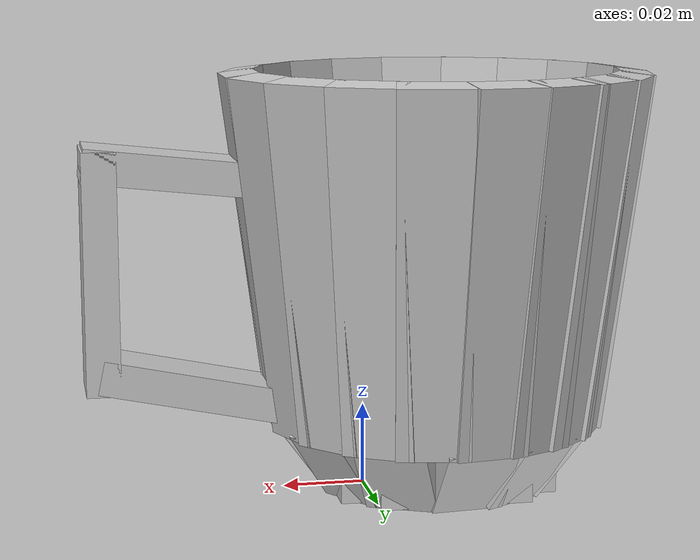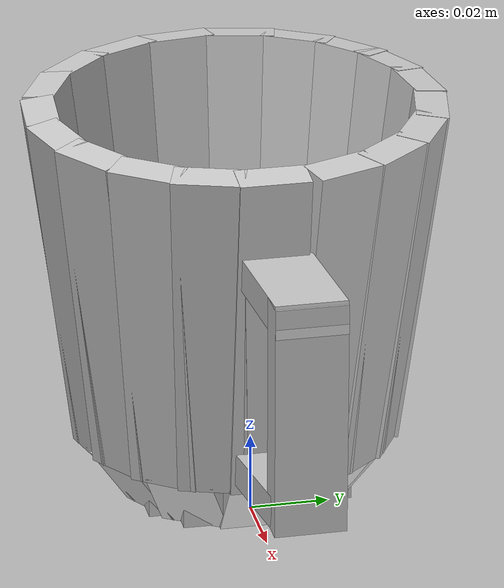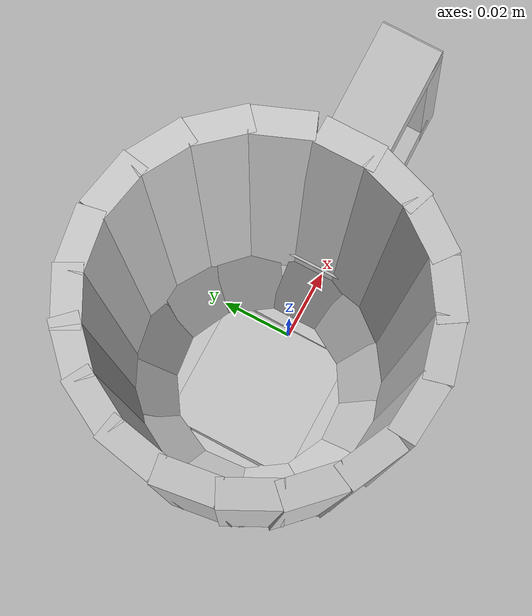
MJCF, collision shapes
<mujoco model="white_yellow_mug">
  <asset>
  <texture file="../textures/white_yellow_mug_texture.png" name="tex-white_yellow_mug" type="2d" />
  <material name="white_yellow_mug" reflectance="0.5" texrepeat="1 1" texture="tex-white_yellow_mug" texuniform="false" />
  <mesh file="meshes/white_yellow_mug_vis.msh" name="white_yellow_mug_vis" scale="1.0 1.0 1.0" /></asset>
  <worldbody>
    <body>
      <body name="object">
        <geom pos="0 0 0" mesh="white_yellow_mug_vis" type="mesh" contype="0" conaffinity="0" solimp="0.998 0.998 0.001" solref="0.001 1" density="100" friction="0.95 0.3 0.1" material="white_yellow_mug" group="1" condim="4"/>

        <geom solimp="0.998 0.998 0.001" solref="0.001 1" density="100" friction="0.95 0.3 0.1" type="box" pos="0.06406 -0.00000 0.05598" quat="1.00000 -0.00000 -0.00000 -0.00000" size="0.00412 0.00876 0.02924" group="0" rgba="0.8 0.8 0.8 0." />
        <geom solimp="0.998 0.998 0.001" solref="0.001 1" density="100" friction="0.95 0.3 0.1" type="box" pos="0.04022 0.00000 0.02629" quat="0.63072 0.00000 -0.77601 0.00000" size="0.00413 0.00876 0.02493" group="0" rgba="0.8 0.8 0.8 0." />
        <geom solimp="0.998 0.998 0.001" solref="0.001 1" density="100" friction="0.95 0.3 0.1" type="box" pos="0.04641 0.00000 0.07965" quat="0.74473 -0.00000 0.66737 -0.00000" size="0.00411 0.00876 0.02172" group="0" rgba="0.8 0.8 0.8 0." />
        <geom solimp="0.998 0.998 0.001" solref="0.001 1" density="100" friction="0.95 0.3 0.1" type="box" pos="0.02428 -0.00100 0.05934" quat="0.99786 -0.00000 0.06541 -0.00000" size="0.00412 0.00876 0.04361" group="0" rgba="0.8 0.8 0.8 0." />
        <geom solimp="0.998 0.998 0.001" solref="0.001 1" density="100" friction="0.95 0.3 0.1" type="box" pos="0.02168 0.01468 0.05934" quat="0.01223 0.98027 0.18655 -0.06426" size="0.00412 0.00876 0.04361" group="0" rgba="0.8 0.8 0.8 0." />
        <geom solimp="0.998 0.998 0.001" solref="0.001 1" density="100" friction="0.95 0.3 0.1" type="box" pos="0.01459 0.02702 0.05934" quat="0.02282 0.93515 0.34816 -0.06130" size="0.00412 0.00876 0.04361" group="0" rgba="0.8 0.8 0.8 0." />
        <geom solimp="0.998 0.998 0.001" solref="0.001 1" density="100" friction="0.95 0.3 0.1" type="box" pos="0.00383 0.03634 0.05934" quat="0.05661 0.49992 -0.86360 0.03277" size="0.00413 0.00876 0.04361" group="0" rgba="0.8 0.8 0.8 0." />
        <geom solimp="0.998 0.998 0.001" solref="0.001 1" density="100" friction="0.95 0.3 0.1" type="box" pos="-0.00868 0.04141 0.05934" quat="0.04134 0.77326 0.63070 -0.05069" size="0.00412 0.00876 0.04361" group="0" rgba="0.8 0.8 0.8 0." />
        <geom solimp="0.998 0.998 0.001" solref="0.001 1" density="100" friction="0.95 0.3 0.1" type="box" pos="-0.02322 0.04219 0.05934" quat="0.04942 0.65373 0.75390 -0.04285" size="0.00412 0.00876 0.04361" group="0" rgba="0.8 0.8 0.8 0." />
        <geom solimp="0.998 0.998 0.001" solref="0.001 1" density="100" friction="0.95 0.3 0.1" type="box" pos="-0.03613 0.03851 0.05934" quat="0.52640 -0.05557 0.03451 0.84772" size="0.00412 0.00876 0.04361" group="0" rgba="0.8 0.8 0.8 0." />
        <geom solimp="0.998 0.998 0.001" solref="0.001 1" density="100" friction="0.95 0.3 0.1" type="box" pos="-0.04594 0.03217 0.05934" quat="0.05978 0.40487 0.91203 -0.02654" size="0.00413 0.00876 0.04361" group="0" rgba="0.8 0.8 0.8 0." />
        <geom solimp="0.998 0.998 0.001" solref="0.001 1" density="100" friction="0.95 0.3 0.1" type="box" pos="-0.05444 0.02216 0.05934" quat="0.25900 -0.06317 0.01698 0.96366" size="0.00412 0.00876 0.04361" group="0" rgba="0.8 0.8 0.8 0." />
        <geom solimp="0.998 0.998 0.001" solref="0.001 1" density="100" friction="0.95 0.3 0.1" type="box" pos="-0.05951 0.00987 0.05934" quat="0.06505 0.10512 0.99231 -0.00689" size="0.00412 0.00876 0.04361" group="0" rgba="0.8 0.8 0.8 0." />
        <geom solimp="0.998 0.998 0.001" solref="0.001 1" density="100" friction="0.95 0.3 0.1" type="box" pos="-0.06044 -0.00450 0.05934" quat="0.06466 0.06527 0.00424 -0.99576" size="0.00413 0.00876 0.04361" group="0" rgba="0.8 0.8 0.8 0." />
        <geom solimp="0.998 0.998 0.001" solref="0.001 1" density="100" friction="0.95 0.3 0.1" type="box" pos="-0.05654 -0.01830 0.05934" quat="0.06362 -0.23170 0.97059 0.01519" size="0.00412 0.00876 0.04361" group="0" rgba="0.8 0.8 0.8 0." />
        <geom solimp="0.998 0.998 0.001" solref="0.001 1" density="100" friction="0.95 0.3 0.1" type="box" pos="-0.04863 -0.02964 0.05934" quat="0.38651 0.06030 0.02533 -0.91996" size="0.00413 0.00876 0.04361" group="0" rgba="0.8 0.8 0.8 0." />
        <geom solimp="0.998 0.998 0.001" solref="0.001 1" density="100" friction="0.95 0.3 0.1" type="box" pos="-0.03703 -0.03808 0.05934" quat="0.05516 -0.53632 0.84148 0.03516" size="0.00412 0.00876 0.04361" group="0" rgba="0.8 0.8 0.8 0." />
        <geom solimp="0.998 0.998 0.001" solref="0.001 1" density="100" friction="0.95 0.3 0.1" type="box" pos="-0.02220 -0.04230 0.05934" quat="0.68004 0.04787 0.04458 -0.73025" size="0.00413 0.00876 0.04361" group="0" rgba="0.8 0.8 0.8 0." />
        <geom solimp="0.998 0.998 0.001" solref="0.001 1" density="100" friction="0.95 0.3 0.1" type="box" pos="-0.00773 -0.04118 0.05934" quat="0.03955 -0.79478 0.60337 0.05210" size="0.00412 0.00876 0.04361" group="0" rgba="0.8 0.8 0.8 0." />
        <geom solimp="0.998 0.998 0.001" solref="0.001 1" density="100" friction="0.95 0.3 0.1" type="box" pos="0.00471 -0.03578 0.05934" quat="0.03072 -0.88092 0.46872 0.05775" size="0.00412 0.00876 0.04361" group="0" rgba="0.8 0.8 0.8 0." />
        <geom solimp="0.998 0.998 0.001" solref="0.001 1" density="100" friction="0.95 0.3 0.1" type="box" pos="0.01547 -0.02593 0.05934" quat="0.02035 -0.94832 0.31051 0.06216" size="0.00412 0.00876 0.04361" group="0" rgba="0.8 0.8 0.8 0." />
        <geom solimp="0.998 0.998 0.001" solref="0.001 1" density="100" friction="0.95 0.3 0.1" type="box" pos="0.02184 -0.01422 0.05934" quat="0.01035 -0.98528 0.15795 0.06459" size="0.00412 0.00876 0.04361" group="0" rgba="0.8 0.8 0.8 0." />
        <geom solimp="0.998 0.998 0.001" solref="0.001 1" density="100" friction="0.95 0.3 0.1" type="box" pos="0.01284 -0.00100 0.01060" quat="0.95039 -0.00000 0.31107 -0.00000" size="0.00407 0.00876 0.01028" group="0" rgba="0.8 0.8 0.8 0." />
        <geom solimp="0.998 0.998 0.001" solref="0.001 1" density="100" friction="0.95 0.3 0.1" type="box" pos="0.00804 0.01661 0.01060" quat="0.09140 0.90843 0.27925 -0.29735" size="0.00407 0.00876 0.01028" group="0" rgba="0.8 0.8 0.8 0." />
        <geom solimp="0.998 0.998 0.001" solref="0.001 1" density="100" friction="0.95 0.3 0.1" type="box" pos="-0.00359 0.02740 0.01060" quat="0.80691 -0.16435 0.26412 0.50212" size="0.00407 0.00876 0.01028" group="0" rgba="0.8 0.8 0.8 0." />
        <geom solimp="0.998 0.998 0.001" solref="0.001 1" density="100" friction="0.95 0.3 0.1" type="box" pos="-0.02029 0.03097 0.01060" quat="0.63771 -0.23063 0.20873 0.70468" size="0.00407 0.00876 0.01028" group="0" rgba="0.8 0.8 0.8 0." />
        <geom solimp="0.998 0.998 0.001" solref="0.001 1" density="100" friction="0.95 0.3 0.1" type="box" pos="-0.03400 0.02672 0.01060" quat="0.14973 0.83305 -0.45745 0.27267" size="0.00407 0.00876 0.01028" group="0" rgba="0.8 0.8 0.8 0." />
        <geom solimp="0.998 0.998 0.001" solref="0.001 1" density="100" friction="0.95 0.3 0.1" type="box" pos="-0.04548 0.01480 0.01060" quat="0.21896 -0.30271 0.07166 0.92482" size="0.00407 0.00876 0.01028" group="0" rgba="0.8 0.8 0.8 0." />
        <geom solimp="0.998 0.998 0.001" solref="0.001 1" density="100" friction="0.95 0.3 0.1" type="box" pos="-0.04922 -0.00110 0.01060" quat="0.01047 -0.94985 -0.03200 -0.31090" size="0.00407 0.00876 0.01028" group="0" rgba="0.8 0.8 0.8 0." />
        <geom solimp="0.998 0.998 0.001" solref="0.001 1" density="100" friction="0.95 0.3 0.1" type="box" pos="-0.04438 -0.01667 0.01060" quat="0.28029 0.29724 0.09175 -0.90811" size="0.00407 0.00876 0.01028" group="0" rgba="0.8 0.8 0.8 0." />
        <geom solimp="0.998 0.998 0.001" solref="0.001 1" density="100" friction="0.95 0.3 0.1" type="box" pos="-0.03258 -0.02751 0.01060" quat="0.26346 -0.50529 0.80493 0.16539" size="0.00407 0.00876 0.01028" group="0" rgba="0.8 0.8 0.8 0." />
        <geom solimp="0.998 0.998 0.001" solref="0.001 1" density="100" friction="0.95 0.3 0.1" type="box" pos="-0.01770 -0.03104 0.01060" quat="0.21464 -0.68791 0.65575 0.22518" size="0.00407 0.00876 0.01028" group="0" rgba="0.8 0.8 0.8 0." />
        <geom solimp="0.998 0.998 0.001" solref="0.001 1" density="100" friction="0.95 0.3 0.1" type="box" pos="-0.00302 -0.02709 0.01060" quat="0.82754 0.15297 0.27086 -0.46735" size="0.00407 0.00876 0.01028" group="0" rgba="0.8 0.8 0.8 0." />
        <geom solimp="0.998 0.998 0.001" solref="0.001 1" density="100" friction="0.95 0.3 0.1" type="box" pos="0.00801 -0.01666 0.01060" quat="0.91668 0.08211 0.30004 -0.25086" size="0.00407 0.00876 0.01028" group="0" rgba="0.8 0.8 0.8 0." />
        <geom solimp="0.998 0.998 0.001" solref="0.001 1" density="100" friction="0.95 0.3 0.1" type="box" pos="-0.01819 -0.00000 0.00274" quat="0.50000 0.50000 -0.50000 0.50000" size="0.00250 0.01861 0.01861" group="0" rgba="0.8 0.8 0.8 0." />
        <geom solimp="0.998 0.998 0.001" solref="0.001 1" density="100" friction="0.95 0.3 0.1" type="box" pos="-0.01819 -0.02210 0.00274" quat="0.70711 0.00000 0.70711 0.00000" size="0.00250 0.00383 0.01861" group="0" rgba="0.8 0.8 0.8 0." />
        <geom solimp="0.998 0.998 0.001" solref="0.001 1" density="100" friction="0.95 0.3 0.1" type="box" pos="-0.01819 0.02210 0.00274" quat="0.70711 0.00000 0.70711 0.00000" size="0.00250 0.00383 0.01861" group="0" rgba="0.8 0.8 0.8 0." />
        <geom solimp="0.998 0.998 0.001" solref="0.001 1" density="100" friction="0.95 0.3 0.1" type="box" pos="-0.04120 -0.00000 0.00274" quat="0.50359 -0.49638 0.50360 0.49638" size="0.00250 0.00383 0.01860" group="0" rgba="0.8 0.8 0.8 0." />
        <geom solimp="0.998 0.998 0.001" solref="0.001 1" density="100" friction="0.95 0.3 0.1" type="box" pos="0.00460 -0.00000 0.00274" quat="0.50359 -0.49638 0.50360 0.49638" size="0.00250 0.00383 0.01860" group="0" rgba="0.8 0.8 0.8 0." />

      </body>

      <site rgba="0 0 0 0" size="0.005" pos="0 0 -0.06" name="bottom_site" />
      <site rgba="0 0 0 0" size="0.005" pos="0 0 0.04" name="top_site" />
      <site rgba="0 0 0 0" size="0.005" pos="0.025 0.025 0" name="horizontal_radius_site" />
    </body>
  </worldbody>
</mujoco>
